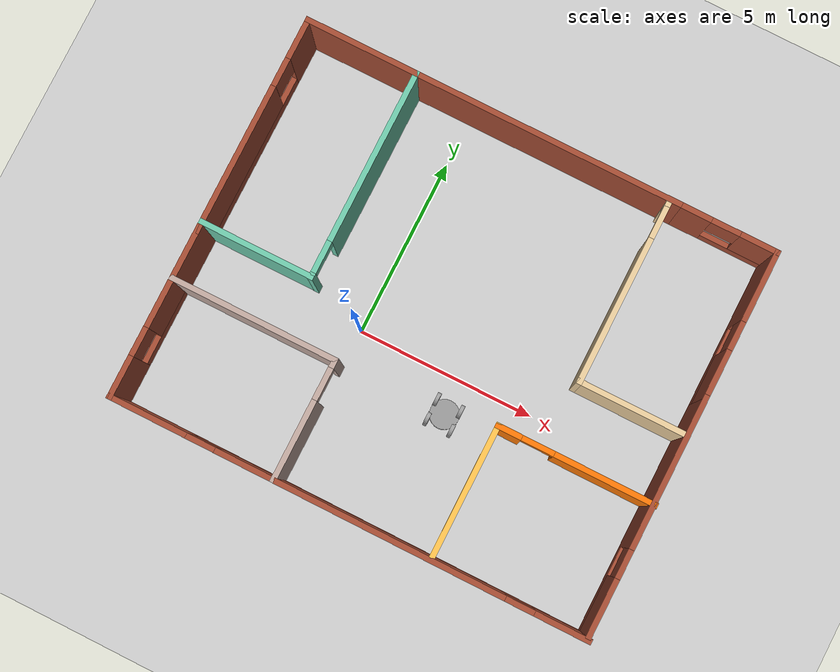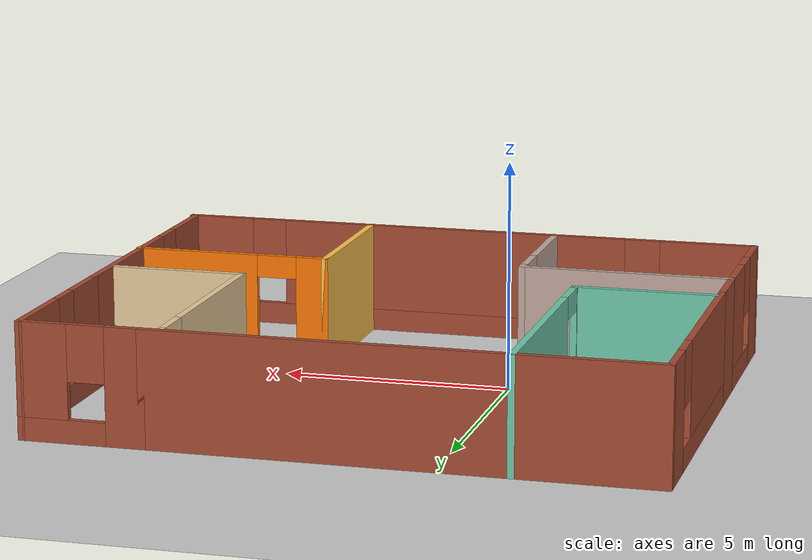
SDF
<sdf version="1.7">
 <world name="default">
  <model name="ground_plane">
   <static>1</static>
   <link name="link">
    <collision name="collision_collision">
     <geometry><plane><normal>0 0 1</normal><size>100 100</size></plane></geometry>
     <surface>
      <contact><collide_bitmask>65535</collide_bitmask></contact>
      <friction><ode><mu>100</mu><mu2>50</mu2></ode></friction>
     </surface>
    </collision>
    <visual name="visual_visual">
     <cast_shadows>0</cast_shadows>
     <geometry><plane><normal>0 0 1</normal><size>100 100</size></plane></geometry>
     <material>
      <script><uri>file://media/materials/scripts/gazebo.material</uri><name>Gazebo/Grey</name></script>
     </material>
    </visual>
   </link>
  </model>
  <model name="new_building">
   <pose>2.035 0.93 0 0 -0 0</pose>
   <link name="Wall_0">
    <pose>0 -5.4 0 0 -0 0</pose>
    <visual name="Wall_0_Visual_0">
     <pose>-5.63828 0 1.25 0 -0 0</pose>
     <geometry><box><size>2.22345 0.15 2.5</size></box></geometry>
     <material>
      <script><uri>file://media/materials/scripts/gazebo.material</uri><name>Gazebo/Bricks</name></script>
      <ambient>0.996078 0.47451 0.0196078 1</ambient>
     </material>
     <meta><layer>0</layer></meta>
    </visual>
    <collision name="Wall_0_Collision_0">
     <geometry><box><size>2.22345 0.15 2.5</size></box></geometry>
     <pose>-5.63828 0 1.25 0 -0 0</pose>
    </collision>
    <visual name="Wall_0_Visual_1">
     <pose>1.11173 0 0.25 0 -0 0</pose>
     <geometry><box><size>11.2766 0.15 0.5</size></box></geometry>
     <material>
      <script><uri>file://media/materials/scripts/gazebo.material</uri><name>Gazebo/Bricks</name></script>
      <ambient>0.996078 0.47451 0.0196078 1</ambient>
     </material>
     <meta><layer>0</layer></meta>
    </visual>
    <collision name="Wall_0_Collision_1">
     <geometry><box><size>11.2766 0.15 0.5</size></box></geometry>
     <pose>1.11173 0 0.25 0 -0 0</pose>
    </collision>
    <visual name="Wall_0_Visual_2">
     <pose>0.325624 0 1.5 0 -0 0</pose>
     <geometry><box><size>8.10435 0.15 2</size></box></geometry>
     <material>
      <script><uri>file://media/materials/scripts/gazebo.material</uri><name>Gazebo/Bricks</name></script>
      <ambient>0.996078 0.47451 0.0196078 1</ambient>
     </material>
     <meta><layer>0</layer></meta>
    </visual>
    <collision name="Wall_0_Collision_2">
     <geometry><box><size>8.10435 0.15 2</size></box></geometry>
     <pose>0.325624 0 1.5 0 -0 0</pose>
    </collision>
    <visual name="Wall_0_Visual_3">
     <pose>5.9639 0 1.5 0 -0 0</pose>
     <geometry><box><size>1.5722 0.15 2</size></box></geometry>
     <material>
      <script><uri>file://media/materials/scripts/gazebo.material</uri><name>Gazebo/Bricks</name></script>
      <ambient>0.996078 0.47451 0.0196078 1</ambient>
     </material>
     <meta><layer>0</layer></meta>
    </visual>
    <collision name="Wall_0_Collision_3">
     <geometry><box><size>1.5722 0.15 2</size></box></geometry>
     <pose>5.9639 0 1.5 0 -0 0</pose>
    </collision>
    <visual name="Wall_0_Visual_4">
     <pose>-4.12655 0 1.9 0 -0 0</pose>
     <geometry><box><size>0.8 0.15 1.2</size></box></geometry>
     <material>
      <script><uri>file://media/materials/scripts/gazebo.material</uri><name>Gazebo/Bricks</name></script>
      <ambient>0.996078 0.47451 0.0196078 1</ambient>
     </material>
     <meta><layer>0</layer></meta>
    </visual>
    <collision name="Wall_0_Collision_4">
     <geometry><box><size>0.8 0.15 1.2</size></box></geometry>
     <pose>-4.12655 0 1.9 0 -0 0</pose>
    </collision>
    <visual name="Wall_0_Visual_5">
     <pose>4.7778 0 1.9 0 -0 0</pose>
     <geometry><box><size>0.8 0.15 1.2</size></box></geometry>
     <material>
      <script><uri>file://media/materials/scripts/gazebo.material</uri><name>Gazebo/Bricks</name></script>
      <ambient>0.996078 0.47451 0.0196078 1</ambient>
     </material>
     <meta><layer>0</layer></meta>
    </visual>
    <collision name="Wall_0_Collision_5">
     <geometry><box><size>0.8 0.15 1.2</size></box></geometry>
     <pose>4.7778 0 1.9 0 -0 0</pose>
    </collision>
   </link>
   <link name="Wall_10">
    <pose>-3.575 2.475 0 0 -0 1.5708</pose>
    <visual name="Wall_10_Visual_0">
     <pose>-2.90343 0 1.25 0 -0 0</pose>
     <geometry><box><size>0.193143 0.15 2.5</size></box></geometry>
     <material>
      <script><uri>file://media/materials/scripts/gazebo.material</uri><name>Gazebo/Grey</name></script>
      <ambient>0.435294 0.796078 0.67451 1</ambient>
     </material>
     <meta><layer>0</layer></meta>
    </visual>
    <collision name="Wall_10_Collision_0">
     <geometry><box><size>0.193143 0.15 2.5</size></box></geometry>
     <pose>-2.90343 0 1.25 0 -0 0</pose>
    </collision>
    <visual name="Wall_10_Visual_1">
     <pose>0.546572 0 1.25 0 -0 0</pose>
     <geometry><box><size>4.90686 0.15 2.5</size></box></geometry>
     <material>
      <script><uri>file://media/materials/scripts/gazebo.material</uri><name>Gazebo/Grey</name></script>
      <ambient>0.435294 0.796078 0.67451 1</ambient>
     </material>
     <meta><layer>0</layer></meta>
    </visual>
    <collision name="Wall_10_Collision_1">
     <geometry><box><size>4.90686 0.15 2.5</size></box></geometry>
     <pose>0.546572 0 1.25 0 -0 0</pose>
    </collision>
    <visual name="Wall_10_Visual_2">
     <pose>-2.35686 0 2.25 0 -0 0</pose>
     <geometry><box><size>0.9 0.15 0.5</size></box></geometry>
     <material>
      <script><uri>file://media/materials/scripts/gazebo.material</uri><name>Gazebo/Grey</name></script>
      <ambient>0.435294 0.796078 0.67451 1</ambient>
     </material>
     <meta><layer>0</layer></meta>
    </visual>
    <collision name="Wall_10_Collision_2">
     <geometry><box><size>0.9 0.15 0.5</size></box></geometry>
     <pose>-2.35686 0 2.25 0 -0 0</pose>
    </collision>
   </link>
   <link name="Wall_11">
    <collision name="Wall_11_Collision">
     <geometry><box><size>3.25 0.15 2.5</size></box></geometry>
     <pose>0 0 1.25 0 -0 0</pose>
    </collision>
    <visual name="Wall_11_Visual">
     <pose>0 0 1.25 0 -0 0</pose>
     <geometry><box><size>3.25 0.15 2.5</size></box></geometry>
     <material>
      <script><uri>file://media/materials/scripts/gazebo.material</uri><name>Gazebo/Bricks</name></script>
      <ambient>0.996078 0.47451 0.0196078 1</ambient>
     </material>
     <meta><layer>0</layer></meta>
    </visual>
    <pose>-5.125 5.4 0 0 -0 3.14159</pose>
   </link>
   <link name="Wall_12">
    <pose>-6.675 2.35 0 0 -0 -1.5708</pose>
    <visual name="Wall_12_Visual_0">
     <pose>-2.52483 0 1.25 0 -0 0</pose>
     <geometry><box><size>1.20033 0.15 2.5</size></box></geometry>
     <material>
      <script><uri>file://media/materials/scripts/gazebo.material</uri><name>Gazebo/Bricks</name></script>
      <ambient>0.996078 0.47451 0.0196078 1</ambient>
     </material>
     <meta><layer>0</layer></meta>
    </visual>
    <collision name="Wall_12_Collision_0">
     <geometry><box><size>1.20033 0.15 2.5</size></box></geometry>
     <pose>-2.52483 0 1.25 0 -0 0</pose>
    </collision>
    <visual name="Wall_12_Visual_1">
     <pose>0.600168 0 0.25 0 -0 0</pose>
     <geometry><box><size>5.04967 0.15 0.5</size></box></geometry>
     <material>
      <script><uri>file://media/materials/scripts/gazebo.material</uri><name>Gazebo/Bricks</name></script>
      <ambient>0.996078 0.47451 0.0196078 1</ambient>
     </material>
     <meta><layer>0</layer></meta>
    </visual>
    <collision name="Wall_12_Collision_1">
     <geometry><box><size>5.04967 0.15 0.5</size></box></geometry>
     <pose>0.600168 0 0.25 0 -0 0</pose>
    </collision>
    <visual name="Wall_12_Visual_2">
     <pose>1.00017 0 1.5 0 -0 0</pose>
     <geometry><box><size>4.24967 0.15 2</size></box></geometry>
     <material>
      <script><uri>file://media/materials/scripts/gazebo.material</uri><name>Gazebo/Bricks</name></script>
      <ambient>0.996078 0.47451 0.0196078 1</ambient>
     </material>
     <meta><layer>0</layer></meta>
    </visual>
    <collision name="Wall_12_Collision_2">
     <geometry><box><size>4.24967 0.15 2</size></box></geometry>
     <pose>1.00017 0 1.5 0 -0 0</pose>
    </collision>
    <visual name="Wall_12_Visual_3">
     <pose>-1.52466 0 1.9 0 -0 0</pose>
     <geometry><box><size>0.8 0.15 1.2</size></box></geometry>
     <material>
      <script><uri>file://media/materials/scripts/gazebo.material</uri><name>Gazebo/Bricks</name></script>
      <ambient>0.996078 0.47451 0.0196078 1</ambient>
     </material>
     <meta><layer>0</layer></meta>
    </visual>
    <collision name="Wall_12_Collision_3">
     <geometry><box><size>0.8 0.15 1.2</size></box></geometry>
     <pose>-1.52466 0 1.9 0 -0 0</pose>
    </collision>
   </link>
   <link name="Wall_14">
    <collision name="Wall_14_Collision">
     <geometry><box><size>7.75 0.15 2.5</size></box></geometry>
     <pose>0 0 1.25 0 -0 0</pose>
    </collision>
    <visual name="Wall_14_Visual">
     <pose>0 0 1.25 0 -0 0</pose>
     <geometry><box><size>7.75 0.15 2.5</size></box></geometry>
     <material>
      <script><uri>file://media/materials/scripts/gazebo.material</uri><name>Gazebo/Bricks</name></script>
      <ambient>0.996078 0.47451 0.0196078 1</ambient>
     </material>
     <meta><layer>0</layer></meta>
    </visual>
    <pose>0.225 5.4 0 0 -0 0</pose>
   </link>
   <link name="Wall_15">
    <pose>5.325 5.4 0 0 -0 0</pose>
    <visual name="Wall_15_Visual_0">
     <pose>-0.952406 0 1.25 0 -0 0</pose>
     <geometry><box><size>0.845189 0.15 2.5</size></box></geometry>
     <material>
      <script><uri>file://media/materials/scripts/gazebo.material</uri><name>Gazebo/Bricks</name></script>
      <ambient>0.996078 0.47451 0.0196078 1</ambient>
     </material>
     <meta><layer>0</layer></meta>
    </visual>
    <collision name="Wall_15_Collision_0">
     <geometry><box><size>0.845189 0.15 2.5</size></box></geometry>
     <pose>-0.952406 0 1.25 0 -0 0</pose>
    </collision>
    <visual name="Wall_15_Visual_1">
     <pose>0.422594 0 0.25 0 -0 0</pose>
     <geometry><box><size>1.90481 0.15 0.5</size></box></geometry>
     <material>
      <script><uri>file://media/materials/scripts/gazebo.material</uri><name>Gazebo/Bricks</name></script>
      <ambient>0.996078 0.47451 0.0196078 1</ambient>
     </material>
     <meta><layer>0</layer></meta>
    </visual>
    <collision name="Wall_15_Collision_1">
     <geometry><box><size>1.90481 0.15 0.5</size></box></geometry>
     <pose>0.422594 0 0.25 0 -0 0</pose>
    </collision>
    <visual name="Wall_15_Visual_2">
     <pose>0.822594 0 1.5 0 -0 0</pose>
     <geometry><box><size>1.10481 0.15 2</size></box></geometry>
     <material>
      <script><uri>file://media/materials/scripts/gazebo.material</uri><name>Gazebo/Bricks</name></script>
      <ambient>0.996078 0.47451 0.0196078 1</ambient>
     </material>
     <meta><layer>0</layer></meta>
    </visual>
    <collision name="Wall_15_Collision_2">
     <geometry><box><size>1.10481 0.15 2</size></box></geometry>
     <pose>0.822594 0 1.5 0 -0 0</pose>
    </collision>
    <visual name="Wall_15_Visual_3">
     <pose>-0.129811 0 1.9 0 -0 0</pose>
     <geometry><box><size>0.8 0.15 1.2</size></box></geometry>
     <material>
      <script><uri>file://media/materials/scripts/gazebo.material</uri><name>Gazebo/Bricks</name></script>
      <ambient>0.996078 0.47451 0.0196078 1</ambient>
     </material>
     <meta><layer>0</layer></meta>
    </visual>
    <collision name="Wall_15_Collision_3">
     <geometry><box><size>0.8 0.15 1.2</size></box></geometry>
     <pose>-0.129811 0 1.9 0 -0 0</pose>
    </collision>
   </link>
   <link name="Wall_16">
    <pose>6.625 3.35 0 0 -0 -1.5708</pose>
    <visual name="Wall_16_Visual_0">
     <pose>-1.10744 0 1.25 0 -0 0</pose>
     <geometry><box><size>2.03512 0.15 2.5</size></box></geometry>
     <material>
      <script><uri>file://media/materials/scripts/gazebo.material</uri><name>Gazebo/Bricks</name></script>
      <ambient>0.996078 0.47451 0.0196078 1</ambient>
     </material>
     <meta><layer>0</layer></meta>
    </visual>
    <collision name="Wall_16_Collision_0">
     <geometry><box><size>2.03512 0.15 2.5</size></box></geometry>
     <pose>-1.10744 0 1.25 0 -0 0</pose>
    </collision>
    <visual name="Wall_16_Visual_1">
     <pose>1.01756 0 0.25 0 -0 0</pose>
     <geometry><box><size>2.21488 0.15 0.5</size></box></geometry>
     <material>
      <script><uri>file://media/materials/scripts/gazebo.material</uri><name>Gazebo/Bricks</name></script>
      <ambient>0.996078 0.47451 0.0196078 1</ambient>
     </material>
     <meta><layer>0</layer></meta>
    </visual>
    <collision name="Wall_16_Collision_1">
     <geometry><box><size>2.21488 0.15 0.5</size></box></geometry>
     <pose>1.01756 0 0.25 0 -0 0</pose>
    </collision>
    <visual name="Wall_16_Visual_2">
     <pose>1.41756 0 1.5 0 -0 0</pose>
     <geometry><box><size>1.41488 0.15 2</size></box></geometry>
     <material>
      <script><uri>file://media/materials/scripts/gazebo.material</uri><name>Gazebo/Bricks</name></script>
      <ambient>0.996078 0.47451 0.0196078 1</ambient>
     </material>
     <meta><layer>0</layer></meta>
    </visual>
    <collision name="Wall_16_Collision_2">
     <geometry><box><size>1.41488 0.15 2</size></box></geometry>
     <pose>1.41756 0 1.5 0 -0 0</pose>
    </collision>
    <visual name="Wall_16_Visual_3">
     <pose>0.310118 0 1.9 0 -0 0</pose>
     <geometry><box><size>0.8 0.15 1.2</size></box></geometry>
     <material>
      <script><uri>file://media/materials/scripts/gazebo.material</uri><name>Gazebo/Bricks</name></script>
      <ambient>0.996078 0.47451 0.0196078 1</ambient>
     </material>
     <meta><layer>0</layer></meta>
    </visual>
    <collision name="Wall_16_Collision_3">
     <geometry><box><size>0.8 0.15 1.2</size></box></geometry>
     <pose>0.310118 0 1.9 0 -0 0</pose>
    </collision>
   </link>
   <link name="Wall_17">
    <pose>6.625 -2 0 0 -0 -1.5708</pose>
    <visual name="Wall_17_Visual_0">
     <pose>-1.22483 0 1.25 0 -0 0</pose>
     <geometry><box><size>4.30033 0.15 2.5</size></box></geometry>
     <material>
      <script><uri>file://media/materials/scripts/gazebo.material</uri><name>Gazebo/Bricks</name></script>
      <ambient>0.996078 0.47451 0.0196078 1</ambient>
     </material>
     <meta><layer>0</layer></meta>
    </visual>
    <collision name="Wall_17_Collision_0">
     <geometry><box><size>4.30033 0.15 2.5</size></box></geometry>
     <pose>-1.22483 0 1.25 0 -0 0</pose>
    </collision>
    <visual name="Wall_17_Visual_1">
     <pose>2.15017 0 0.25 0 -0 0</pose>
     <geometry><box><size>2.44966 0.15 0.5</size></box></geometry>
     <material>
      <script><uri>file://media/materials/scripts/gazebo.material</uri><name>Gazebo/Bricks</name></script>
      <ambient>0.996078 0.47451 0.0196078 1</ambient>
     </material>
     <meta><layer>0</layer></meta>
    </visual>
    <collision name="Wall_17_Collision_1">
     <geometry><box><size>2.44966 0.15 0.5</size></box></geometry>
     <pose>2.15017 0 0.25 0 -0 0</pose>
    </collision>
    <visual name="Wall_17_Visual_2">
     <pose>2.55017 0 1.5 0 -0 0</pose>
     <geometry><box><size>1.64966 0.15 2</size></box></geometry>
     <material>
      <script><uri>file://media/materials/scripts/gazebo.material</uri><name>Gazebo/Bricks</name></script>
      <ambient>0.996078 0.47451 0.0196078 1</ambient>
     </material>
     <meta><layer>0</layer></meta>
    </visual>
    <collision name="Wall_17_Collision_2">
     <geometry><box><size>1.64966 0.15 2</size></box></geometry>
     <pose>2.55017 0 1.5 0 -0 0</pose>
    </collision>
    <visual name="Wall_17_Visual_3">
     <pose>1.32533 0 1.9 0 -0 0</pose>
     <geometry><box><size>0.8 0.15 1.2</size></box></geometry>
     <material>
      <script><uri>file://media/materials/scripts/gazebo.material</uri><name>Gazebo/Bricks</name></script>
      <ambient>0.996078 0.47451 0.0196078 1</ambient>
     </material>
     <meta><layer>0</layer></meta>
    </visual>
    <collision name="Wall_17_Collision_3">
     <geometry><box><size>0.8 0.15 1.2</size></box></geometry>
     <pose>1.32533 0 1.9 0 -0 0</pose>
    </collision>
   </link>
   <link name="Wall_19">
    <pose>3.62997 2.78553 0 0 -0 -1.5708</pose>
    <visual name="Wall_19_Visual_0">
     <pose>-2.51685 0 1.25 0 -0 0</pose>
     <geometry><box><size>0.216304 0.15 2.5</size></box></geometry>
     <material>
      <script><uri>file://media/materials/scripts/gazebo.material</uri><name>Gazebo/Grey</name></script>
      <ambient>0.921569 0.807843 0.615686 1</ambient>
     </material>
     <meta><layer>0</layer></meta>
    </visual>
    <collision name="Wall_19_Collision_0">
     <geometry><box><size>0.216304 0.15 2.5</size></box></geometry>
     <pose>-2.51685 0 1.25 0 -0 0</pose>
    </collision>
    <visual name="Wall_19_Visual_1">
     <pose>0.558152 0 1.25 0 -0 0</pose>
     <geometry><box><size>4.1337 0.15 2.5</size></box></geometry>
     <material>
      <script><uri>file://media/materials/scripts/gazebo.material</uri><name>Gazebo/Grey</name></script>
      <ambient>0.921569 0.807843 0.615686 1</ambient>
     </material>
     <meta><layer>0</layer></meta>
    </visual>
    <collision name="Wall_19_Collision_1">
     <geometry><box><size>4.1337 0.15 2.5</size></box></geometry>
     <pose>0.558152 0 1.25 0 -0 0</pose>
    </collision>
    <visual name="Wall_19_Visual_2">
     <pose>-1.9587 0 2.25 0 -0 0</pose>
     <geometry><box><size>0.9 0.15 0.5</size></box></geometry>
     <material>
      <script><uri>file://media/materials/scripts/gazebo.material</uri><name>Gazebo/Grey</name></script>
      <ambient>0.921569 0.807843 0.615686 1</ambient>
     </material>
     <meta><layer>0</layer></meta>
    </visual>
    <collision name="Wall_19_Collision_2">
     <geometry><box><size>0.9 0.15 0.5</size></box></geometry>
     <pose>-1.9587 0 2.25 0 -0 0</pose>
    </collision>
   </link>
   <link name="Wall_2">
    <pose>-6.675 -3.725 0 0 -0 1.5708</pose>
    <visual name="Wall_2_Visual_0">
     <pose>-1.13604 0 1.25 0 -0 0</pose>
     <geometry><box><size>1.22793 0.15 2.5</size></box></geometry>
     <material>
      <script><uri>file://media/materials/scripts/gazebo.material</uri><name>Gazebo/Bricks</name></script>
      <ambient>0.996078 0.47451 0.0196078 1</ambient>
     </material>
     <meta><layer>0</layer></meta>
    </visual>
    <collision name="Wall_2_Collision_0">
     <geometry><box><size>1.22793 0.15 2.5</size></box></geometry>
     <pose>-1.13604 0 1.25 0 -0 0</pose>
    </collision>
    <visual name="Wall_2_Visual_1">
     <pose>0.613963 0 0.25 0 -0 0</pose>
     <geometry><box><size>2.27207 0.15 0.5</size></box></geometry>
     <material>
      <script><uri>file://media/materials/scripts/gazebo.material</uri><name>Gazebo/Bricks</name></script>
      <ambient>0.996078 0.47451 0.0196078 1</ambient>
     </material>
     <meta><layer>0</layer></meta>
    </visual>
    <collision name="Wall_2_Collision_1">
     <geometry><box><size>2.27207 0.15 0.5</size></box></geometry>
     <pose>0.613963 0 0.25 0 -0 0</pose>
    </collision>
    <visual name="Wall_2_Visual_2">
     <pose>1.01396 0 1.5 0 -0 0</pose>
     <geometry><box><size>1.47207 0.15 2</size></box></geometry>
     <material>
      <script><uri>file://media/materials/scripts/gazebo.material</uri><name>Gazebo/Bricks</name></script>
      <ambient>0.996078 0.47451 0.0196078 1</ambient>
     </material>
     <meta><layer>0</layer></meta>
    </visual>
    <collision name="Wall_2_Collision_2">
     <geometry><box><size>1.47207 0.15 2</size></box></geometry>
     <pose>1.01396 0 1.5 0 -0 0</pose>
    </collision>
    <visual name="Wall_2_Visual_3">
     <pose>-0.122074 0 1.9 0 -0 0</pose>
     <geometry><box><size>0.8 0.15 1.2</size></box></geometry>
     <material>
      <script><uri>file://media/materials/scripts/gazebo.material</uri><name>Gazebo/Bricks</name></script>
      <ambient>0.996078 0.47451 0.0196078 1</ambient>
     </material>
     <meta><layer>0</layer></meta>
    </visual>
    <collision name="Wall_2_Collision_3">
     <geometry><box><size>0.8 0.15 1.2</size></box></geometry>
     <pose>-0.122074 0 1.9 0 -0 0</pose>
    </collision>
   </link>
   <link name="Wall_20">
    <collision name="Wall_20_Collision">
     <geometry><box><size>3 0.15 2.5</size></box></geometry>
     <pose>0 0 1.25 0 -0 0</pose>
    </collision>
    <visual name="Wall_20_Visual">
     <pose>0 0 1.25 0 -0 0</pose>
     <geometry><box><size>3 0.15 2.5</size></box></geometry>
     <material>
      <script><uri>file://media/materials/scripts/gazebo.material</uri><name>Gazebo/Grey</name></script>
      <ambient>0.921569 0.807843 0.615686 1</ambient>
     </material>
     <meta><layer>0</layer></meta>
    </visual>
    <pose>5.05497 0.235534 0 0 -0 0</pose>
   </link>
   <link name="Wall_22">
    <collision name="Wall_22_Collision">
     <geometry><box><size>3.75 0.15 2.5</size></box></geometry>
     <pose>0 0 1.25 0 -0 0</pose>
    </collision>
    <visual name="Wall_22_Visual">
     <pose>0 0 1.25 0 -0 0</pose>
     <geometry><box><size>3.75 0.15 2.5</size></box></geometry>
     <material>
      <script><uri>file://media/materials/scripts/gazebo.material</uri><name>Gazebo/Grey</name></script>
      <ambient>1 0.764706 0.305882 1</ambient>
     </material>
     <meta><layer>0</layer></meta>
    </visual>
    <pose>2.30823 -3.47316 0 0 -0 1.5708</pose>
   </link>
   <link name="Wall_23">
    <pose>4.48323 -1.67316 0 0 -0 0</pose>
    <visual name="Wall_23_Visual_0">
     <pose>-1.88098 0 1.25 0 -0 0</pose>
     <geometry><box><size>0.738043 0.15 2.5</size></box></geometry>
     <material>
      <script><uri>file://media/materials/scripts/gazebo.material</uri><name>Gazebo/Grey</name></script>
      <ambient>0.996078 0.47451 0.0196078 1</ambient>
     </material>
     <meta><layer>0</layer></meta>
    </visual>
    <collision name="Wall_23_Collision_0">
     <geometry><box><size>0.738043 0.15 2.5</size></box></geometry>
     <pose>-1.88098 0 1.25 0 -0 0</pose>
    </collision>
    <visual name="Wall_23_Visual_1">
     <pose>0.819022 0 1.25 0 -0 0</pose>
     <geometry><box><size>2.86196 0.15 2.5</size></box></geometry>
     <material>
      <script><uri>file://media/materials/scripts/gazebo.material</uri><name>Gazebo/Grey</name></script>
      <ambient>0.996078 0.47451 0.0196078 1</ambient>
     </material>
     <meta><layer>0</layer></meta>
    </visual>
    <collision name="Wall_23_Collision_1">
     <geometry><box><size>2.86196 0.15 2.5</size></box></geometry>
     <pose>0.819022 0 1.25 0 -0 0</pose>
    </collision>
    <visual name="Wall_23_Visual_2">
     <pose>-1.06196 0 2.25 0 -0 0</pose>
     <geometry><box><size>0.9 0.15 0.5</size></box></geometry>
     <material>
      <script><uri>file://media/materials/scripts/gazebo.material</uri><name>Gazebo/Grey</name></script>
      <ambient>0.996078 0.47451 0.0196078 1</ambient>
     </material>
     <meta><layer>0</layer></meta>
    </visual>
    <collision name="Wall_23_Collision_2">
     <geometry><box><size>0.9 0.15 0.5</size></box></geometry>
     <pose>-1.06196 0 2.25 0 -0 0</pose>
    </collision>
   </link>
   <link name="Wall_4">
    <collision name="Wall_4_Collision">
     <geometry><box><size>4.75 0.15 2.5</size></box></geometry>
     <pose>0 0 1.25 0 -0 0</pose>
    </collision>
    <visual name="Wall_4_Visual">
     <pose>0 0 1.25 0 -0 0</pose>
     <geometry><box><size>4.75 0.15 2.5</size></box></geometry>
     <material>
      <script><uri>file://media/materials/scripts/gazebo.material</uri><name>Gazebo/Grey</name></script>
      <ambient>0.760784 0.662745 0.627451 1</ambient>
     </material>
     <meta><layer>0</layer></meta>
    </visual>
    <pose>-4.375 -2.05 0 0 -0 0</pose>
   </link>
   <link name="Wall_6">
    <pose>-2.075 -3.725 0 0 -0 -1.5708</pose>
    <visual name="Wall_6_Visual_0">
     <pose>-1.60399 0 1.25 0 -0 0</pose>
     <geometry><box><size>0.292025 0.15 2.5</size></box></geometry>
     <material>
      <script><uri>file://media/materials/scripts/gazebo.material</uri><name>Gazebo/Grey</name></script>
      <ambient>0.760784 0.662745 0.627451 1</ambient>
     </material>
     <meta><layer>0</layer></meta>
    </visual>
    <collision name="Wall_6_Collision_0">
     <geometry><box><size>0.292025 0.15 2.5</size></box></geometry>
     <pose>-1.60399 0 1.25 0 -0 0</pose>
    </collision>
    <visual name="Wall_6_Visual_1">
     <pose>0.596013 0 1.25 0 -0 0</pose>
     <geometry><box><size>2.30797 0.15 2.5</size></box></geometry>
     <material>
      <script><uri>file://media/materials/scripts/gazebo.material</uri><name>Gazebo/Grey</name></script>
      <ambient>0.760784 0.662745 0.627451 1</ambient>
     </material>
     <meta><layer>0</layer></meta>
    </visual>
    <collision name="Wall_6_Collision_1">
     <geometry><box><size>2.30797 0.15 2.5</size></box></geometry>
     <pose>0.596013 0 1.25 0 -0 0</pose>
    </collision>
    <visual name="Wall_6_Visual_2">
     <pose>-1.00798 0 2.25 0 -0 0</pose>
     <geometry><box><size>0.9 0.15 0.5</size></box></geometry>
     <material>
      <script><uri>file://media/materials/scripts/gazebo.material</uri><name>Gazebo/Grey</name></script>
      <ambient>0.760784 0.662745 0.627451 1</ambient>
     </material>
     <meta><layer>0</layer></meta>
    </visual>
    <collision name="Wall_6_Collision_2">
     <geometry><box><size>0.9 0.15 0.5</size></box></geometry>
     <pose>-1.00798 0 2.25 0 -0 0</pose>
    </collision>
   </link>
   <link name="Wall_8">
    <collision name="Wall_8_Collision">
     <geometry><box><size>1.75 0.15 2.5</size></box></geometry>
     <pose>0 0 1.25 0 -0 0</pose>
    </collision>
    <visual name="Wall_8_Visual">
     <pose>0 0 1.25 0 -0 0</pose>
     <geometry><box><size>1.75 0.15 2.5</size></box></geometry>
     <material>
      <script><uri>file://media/materials/scripts/gazebo.material</uri><name>Gazebo/Bricks</name></script>
      <ambient>0.996078 0.47451 0.0196078 1</ambient>
     </material>
     <meta><layer>0</layer></meta>
    </visual>
    <pose>-6.675 -1.25 0 0 -0 1.5708</pose>
   </link>
   <link name="Wall_9">
    <collision name="Wall_9_Collision">
     <geometry><box><size>3.25 0.15 2.5</size></box></geometry>
     <pose>0 0 1.25 0 -0 0</pose>
    </collision>
    <visual name="Wall_9_Visual">
     <pose>0 0 1.25 0 -0 0</pose>
     <geometry><box><size>3.25 0.15 2.5</size></box></geometry>
     <material>
      <script><uri>file://media/materials/scripts/gazebo.material</uri><name>Gazebo/Grey</name></script>
      <ambient>0.435294 0.796078 0.67451 1</ambient>
     </material>
     <meta><layer>0</layer></meta>
    </visual>
    <pose>-5.125 -0.45 0 0 -0 0</pose>
   </link>
   <static>1</static>
  </model>
  <model name="robot2_clone">
   <link name="link_0">
    <inertial>
     <mass>1</mass>
     <inertia><ixx>0.145833</ixx><ixy>0</ixy><ixz>0</ixz><iyy>0.145833</iyy><iyz>0</iyz><izz>0.125</izz></inertia>
    </inertial>
    <pose>-0 0.020098 0 0 -0 0</pose>
    <visual name="visual">
     <geometry><cylinder><radius>0.4</radius><length>0.2</length></cylinder></geometry>
     <material>
      <lighting>1</lighting>
      <script><uri>file://media/materials/scripts/gazebo.material</uri><name>Gazebo/Grey</name></script>
      <shader type="pixel"><normal_map>__default__</normal_map></shader>
      <ambient>0.3 0.3 0.3 1</ambient>
      <diffuse>0.7 0.7 0.7 1</diffuse>
      <specular>0.01 0.01 0.01 1</specular>
      <emissive>0 0 0 1</emissive>
     </material>
    </visual>
    <collision name="collision">
     <geometry><cylinder><radius>0.4</radius><length>0.2</length></cylinder></geometry>
     <surface>
      <friction>
       <ode><mu>1</mu><mu2>1</mu2><fdir1>0 0 0</fdir1><slip1>0</slip1><slip2>0</slip2></ode>
       <torsional>
        <coefficient>1</coefficient>
        <patch_radius>0</patch_radius>
        <surface_radius>0</surface_radius>
        <use_patch_radius>1</use_patch_radius>
        <ode><slip>0</slip></ode>
       </torsional>
      </friction>
      <bounce><restitution_coefficient>0</restitution_coefficient><threshold>1e+06</threshold></bounce>
      <contact>
       <collide_without_contact>0</collide_without_contact>
       <collide_without_contact_bitmask>1</collide_without_contact_bitmask>
       <collide_bitmask>1</collide_bitmask>
       <ode>
        <soft_cfm>0</soft_cfm>
        <soft_erp>0.2</soft_erp>
        <kp>1e+13</kp>
        <kd>1</kd>
        <max_vel>0.01</max_vel>
        <min_depth>0</min_depth>
       </ode>
       <bullet>
        <split_impulse>1</split_impulse>
        <split_impulse_penetration_threshold>-0.01</split_impulse_penetration_threshold>
        <soft_cfm>0</soft_cfm>
        <soft_erp>0.2</soft_erp>
        <kp>1e+13</kp>
        <kd>1</kd>
       </bullet>
      </contact>
     </surface>
    </collision>
   </link>
   <link name="link_1">
    <inertial>
     <mass>1</mass>
     <inertia><ixx>0.145833</ixx><ixy>0</ixy><ixz>0</ixz><iyy>0.145833</iyy><iyz>0</iyz><izz>0.125</izz></inertia>
    </inertial>
    <pose>-0.34992 0.280098 0 0 -0 0</pose>
    <visual name="visual">
     <pose>0 0 0 0 1.57 0</pose>
     <geometry><cylinder><radius>0.2</radius><length>0.1</length></cylinder></geometry>
     <material>
      <lighting>1</lighting>
      <script><uri>file://media/materials/scripts/gazebo.material</uri><name>Gazebo/Grey</name></script>
      <shader type="pixel"><normal_map>__default__</normal_map></shader>
      <ambient>0.3 0.3 0.3 1</ambient>
      <diffuse>0.7 0.7 0.7 1</diffuse>
      <specular>0.01 0.01 0.01 1</specular>
      <emissive>0 0 0 1</emissive>
     </material>
    </visual>
    <collision name="collision">
     <pose>0 0 0 0 1.57 0</pose>
     <geometry><cylinder><radius>0.2</radius><length>0.1</length></cylinder></geometry>
     <surface>
      <friction>
       <ode><mu>1</mu><mu2>1</mu2><fdir1>0 0 0</fdir1><slip1>0</slip1><slip2>0</slip2></ode>
       <torsional>
        <coefficient>1</coefficient>
        <patch_radius>0</patch_radius>
        <surface_radius>0</surface_radius>
        <use_patch_radius>1</use_patch_radius>
        <ode><slip>0</slip></ode>
       </torsional>
      </friction>
      <bounce><restitution_coefficient>0</restitution_coefficient><threshold>1e+06</threshold></bounce>
      <contact>
       <collide_without_contact>0</collide_without_contact>
       <collide_without_contact_bitmask>1</collide_without_contact_bitmask>
       <collide_bitmask>1</collide_bitmask>
       <ode>
        <soft_cfm>0</soft_cfm>
        <soft_erp>0.2</soft_erp>
        <kp>1e+13</kp>
        <kd>1</kd>
        <max_vel>0.01</max_vel>
        <min_depth>0</min_depth>
       </ode>
       <bullet>
        <split_impulse>1</split_impulse>
        <split_impulse_penetration_threshold>-0.01</split_impulse_penetration_threshold>
        <soft_cfm>0</soft_cfm>
        <soft_erp>0.2</soft_erp>
        <kp>1e+13</kp>
        <kd>1</kd>
       </bullet>
      </contact>
     </surface>
    </collision>
   </link>
   <link name="link_1_clone">
    <inertial>
     <mass>1</mass>
     <inertia><ixx>0.145833</ixx><ixy>0</ixy><ixz>0</ixz><iyy>0.145833</iyy><iyz>0</iyz><izz>0.125</izz></inertia>
    </inertial>
    <pose>-0.34992 -0.279902 0 0 -0 0</pose>
    <visual name="visual">
     <pose>0 0 0 0 1.57 0</pose>
     <geometry><cylinder><radius>0.2</radius><length>0.1</length></cylinder></geometry>
     <material>
      <lighting>1</lighting>
      <script><uri>file://media/materials/scripts/gazebo.material</uri><name>Gazebo/Grey</name></script>
      <shader type="pixel"><normal_map>__default__</normal_map></shader>
      <ambient>0.3 0.3 0.3 1</ambient>
      <diffuse>0.7 0.7 0.7 1</diffuse>
      <specular>0.01 0.01 0.01 1</specular>
      <emissive>0 0 0 1</emissive>
     </material>
    </visual>
    <collision name="collision">
     <pose>0 0 0 0 1.57 0</pose>
     <geometry><cylinder><radius>0.2</radius><length>0.1</length></cylinder></geometry>
     <surface>
      <friction>
       <ode><mu>1</mu><mu2>1</mu2><fdir1>0 0 0</fdir1><slip1>0</slip1><slip2>0</slip2></ode>
       <torsional>
        <coefficient>1</coefficient>
        <patch_radius>0</patch_radius>
        <surface_radius>0</surface_radius>
        <use_patch_radius>1</use_patch_radius>
        <ode><slip>0</slip></ode>
       </torsional>
      </friction>
      <bounce><restitution_coefficient>0</restitution_coefficient><threshold>1e+06</threshold></bounce>
      <contact>
       <collide_without_contact>0</collide_without_contact>
       <collide_without_contact_bitmask>1</collide_without_contact_bitmask>
       <collide_bitmask>1</collide_bitmask>
       <ode>
        <soft_cfm>0</soft_cfm>
        <soft_erp>0.2</soft_erp>
        <kp>1e+13</kp>
        <kd>1</kd>
        <max_vel>0.01</max_vel>
        <min_depth>0</min_depth>
       </ode>
       <bullet>
        <split_impulse>1</split_impulse>
        <split_impulse_penetration_threshold>-0.01</split_impulse_penetration_threshold>
        <soft_cfm>0</soft_cfm>
        <soft_erp>0.2</soft_erp>
        <kp>1e+13</kp>
        <kd>1</kd>
       </bullet>
      </contact>
     </surface>
    </collision>
   </link>
   <link name="link_1_clone_0">
    <inertial>
     <mass>1</mass>
     <inertia><ixx>0.145833</ixx><ixy>0</ixy><ixz>0</ixz><iyy>0.145833</iyy><iyz>0</iyz><izz>0.125</izz></inertia>
    </inertial>
    <pose>0.34992 0.259608 0 0 -0 0</pose>
    <visual name="visual">
     <pose>0 0 0 0 1.57 0</pose>
     <geometry><cylinder><radius>0.2</radius><length>0.1</length></cylinder></geometry>
     <material>
      <lighting>1</lighting>
      <script><uri>file://media/materials/scripts/gazebo.material</uri><name>Gazebo/Grey</name></script>
      <shader type="pixel"><normal_map>__default__</normal_map></shader>
      <ambient>0.3 0.3 0.3 1</ambient>
      <diffuse>0.7 0.7 0.7 1</diffuse>
      <specular>0.01 0.01 0.01 1</specular>
      <emissive>0 0 0 1</emissive>
     </material>
    </visual>
    <collision name="collision">
     <pose>0 0 0 0 1.57 0</pose>
     <geometry><cylinder><radius>0.2</radius><length>0.1</length></cylinder></geometry>
     <surface>
      <friction>
       <ode><mu>1</mu><mu2>1</mu2><fdir1>0 0 0</fdir1><slip1>0</slip1><slip2>0</slip2></ode>
       <torsional>
        <coefficient>1</coefficient>
        <patch_radius>0</patch_radius>
        <surface_radius>0</surface_radius>
        <use_patch_radius>1</use_patch_radius>
        <ode><slip>0</slip></ode>
       </torsional>
      </friction>
      <bounce><restitution_coefficient>0</restitution_coefficient><threshold>1e+06</threshold></bounce>
      <contact>
       <collide_without_contact>0</collide_without_contact>
       <collide_without_contact_bitmask>1</collide_without_contact_bitmask>
       <collide_bitmask>1</collide_bitmask>
       <ode>
        <soft_cfm>0</soft_cfm>
        <soft_erp>0.2</soft_erp>
        <kp>1e+13</kp>
        <kd>1</kd>
        <max_vel>0.01</max_vel>
        <min_depth>0</min_depth>
       </ode>
       <bullet>
        <split_impulse>1</split_impulse>
        <split_impulse_penetration_threshold>-0.01</split_impulse_penetration_threshold>
        <soft_cfm>0</soft_cfm>
        <soft_erp>0.2</soft_erp>
        <kp>1e+13</kp>
        <kd>1</kd>
       </bullet>
      </contact>
     </surface>
    </collision>
   </link>
   <link name="link_1_clone_1">
    <inertial>
     <mass>1</mass>
     <inertia><ixx>0.145833</ixx><ixy>0</ixy><ixz>0</ixz><iyy>0.145833</iyy><iyz>0</iyz><izz>0.125</izz></inertia>
    </inertial>
    <pose>0.34992 -0.279902 0 0 -0 0</pose>
    <visual name="visual">
     <pose>0 0 0 0 1.57 0</pose>
     <geometry><cylinder><radius>0.2</radius><length>0.1</length></cylinder></geometry>
     <material>
      <lighting>1</lighting>
      <script><uri>file://media/materials/scripts/gazebo.material</uri><name>Gazebo/Grey</name></script>
      <shader type="pixel"><normal_map>__default__</normal_map></shader>
      <ambient>0.3 0.3 0.3 1</ambient>
      <diffuse>0.7 0.7 0.7 1</diffuse>
      <specular>0.01 0.01 0.01 1</specular>
      <emissive>0 0 0 1</emissive>
     </material>
    </visual>
    <collision name="collision">
     <pose>0 0 0 0 1.57 0</pose>
     <geometry><cylinder><radius>0.2</radius><length>0.1</length></cylinder></geometry>
     <surface>
      <friction>
       <ode><mu>1</mu><mu2>1</mu2><fdir1>0 0 0</fdir1><slip1>0</slip1><slip2>0</slip2></ode>
       <torsional>
        <coefficient>1</coefficient>
        <patch_radius>0</patch_radius>
        <surface_radius>0</surface_radius>
        <use_patch_radius>1</use_patch_radius>
        <ode><slip>0</slip></ode>
       </torsional>
      </friction>
      <bounce><restitution_coefficient>0</restitution_coefficient><threshold>1e+06</threshold></bounce>
      <contact>
       <collide_without_contact>0</collide_without_contact>
       <collide_without_contact_bitmask>1</collide_without_contact_bitmask>
       <collide_bitmask>1</collide_bitmask>
       <ode>
        <soft_cfm>0</soft_cfm>
        <soft_erp>0.2</soft_erp>
        <kp>1e+13</kp>
        <kd>1</kd>
        <max_vel>0.01</max_vel>
        <min_depth>0</min_depth>
       </ode>
       <bullet>
        <split_impulse>1</split_impulse>
        <split_impulse_penetration_threshold>-0.01</split_impulse_penetration_threshold>
        <soft_cfm>0</soft_cfm>
        <soft_erp>0.2</soft_erp>
        <kp>1e+13</kp>
        <kd>1</kd>
       </bullet>
      </contact>
     </surface>
    </collision>
   </link>
   <joint name="link_0_JOINT_0" type="revolute">
    <parent>link_0</parent>
    <child>link_1</child>
    <axis>
     <xyz>1 0 0</xyz>
     <limit>
      <lower>-1.79769e+308</lower>
      <upper>1.79769e+308</upper>
      <effort>-1</effort>
      <velocity>-1</velocity>
     </limit>
     <dynamics>
      <spring_reference>0</spring_reference>
      <spring_stiffness>0</spring_stiffness>
      <damping>0</damping>
     </dynamics>
    </axis>
    <physics>
     <ode><limit><cfm>0</cfm><erp>0.2</erp></limit><suspension><cfm>0</cfm><erp>0.2</erp></suspension></ode>
    </physics>
   </joint>
   <joint name="link_0_JOINT_1" type="revolute">
    <parent>link_0</parent>
    <child>link_1_clone</child>
    <axis>
     <xyz>1 0 0</xyz>
     <limit>
      <lower>-1.79769e+308</lower>
      <upper>1.79769e+308</upper>
      <effort>-1</effort>
      <velocity>-1</velocity>
     </limit>
     <dynamics>
      <spring_reference>0</spring_reference>
      <spring_stiffness>0</spring_stiffness>
      <damping>0</damping>
     </dynamics>
    </axis>
    <physics>
     <ode><limit><cfm>0</cfm><erp>0.2</erp></limit><suspension><cfm>0</cfm><erp>0.2</erp></suspension></ode>
    </physics>
   </joint>
   <joint name="link_0_JOINT_2" type="revolute">
    <parent>link_0</parent>
    <child>link_1_clone_0</child>
    <axis>
     <xyz>1 0 0</xyz>
     <limit>
      <lower>-1.79769e+308</lower>
      <upper>1.79769e+308</upper>
      <effort>-1</effort>
      <velocity>-1</velocity>
     </limit>
     <dynamics>
      <spring_reference>0</spring_reference>
      <spring_stiffness>0</spring_stiffness>
      <damping>0</damping>
     </dynamics>
    </axis>
    <physics>
     <ode><limit><cfm>0</cfm><erp>0.2</erp></limit><suspension><cfm>0</cfm><erp>0.2</erp></suspension></ode>
    </physics>
   </joint>
   <joint name="link_0_JOINT_3" type="revolute">
    <parent>link_0</parent>
    <child>link_1_clone_1</child>
    <axis>
     <xyz>1 0 0</xyz>
     <limit>
      <lower>-1.79769e+308</lower>
      <upper>1.79769e+308</upper>
      <effort>-1</effort>
      <velocity>-1</velocity>
     </limit>
     <dynamics>
      <spring_reference>0</spring_reference>
      <spring_stiffness>0</spring_stiffness>
      <damping>0</damping>
     </dynamics>
    </axis>
    <physics>
     <ode><limit><cfm>0</cfm><erp>0.2</erp></limit><suspension><cfm>0</cfm><erp>0.2</erp></suspension></ode>
    </physics>
   </joint>
   <static>0</static>
   <pose>2.95543 -1.00125 0.20004 0 -0 0.002257</pose>
  </model>
 </world>
</sdf>
